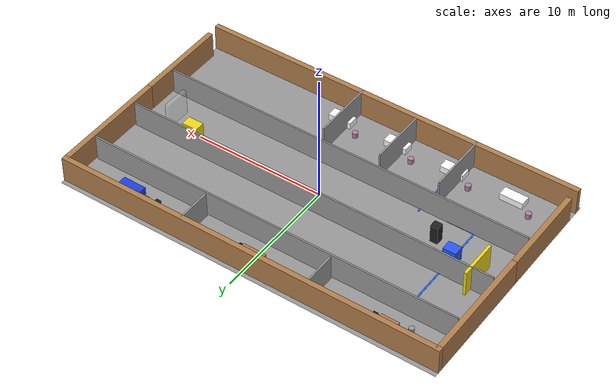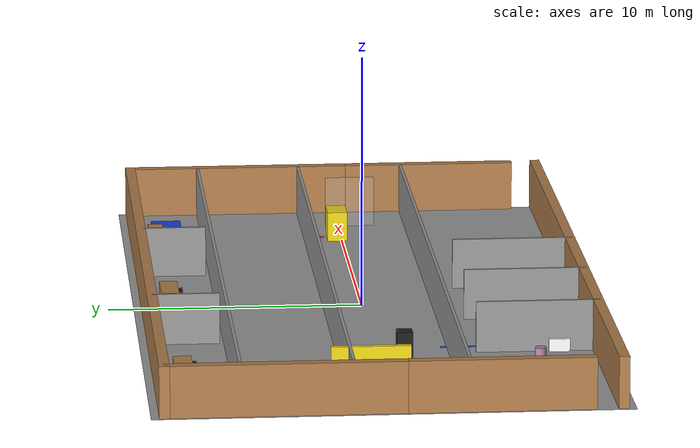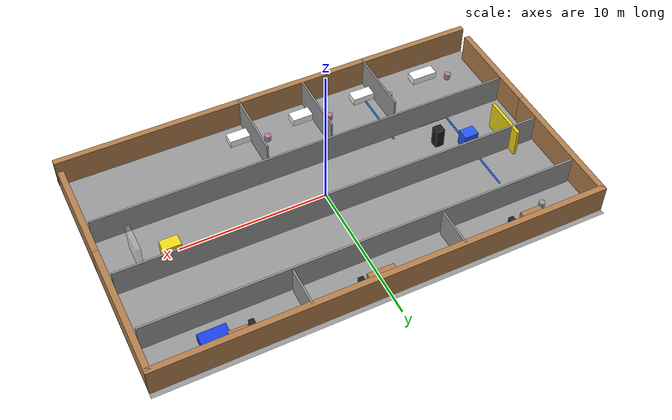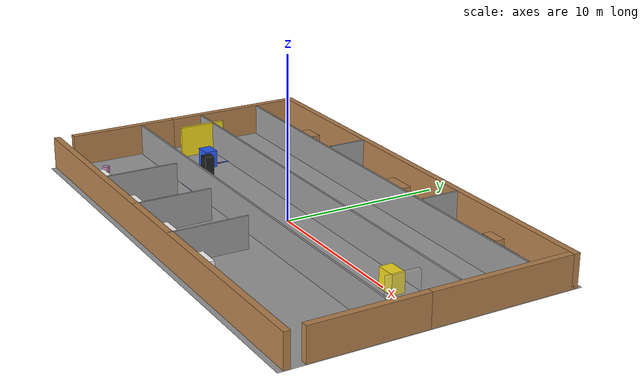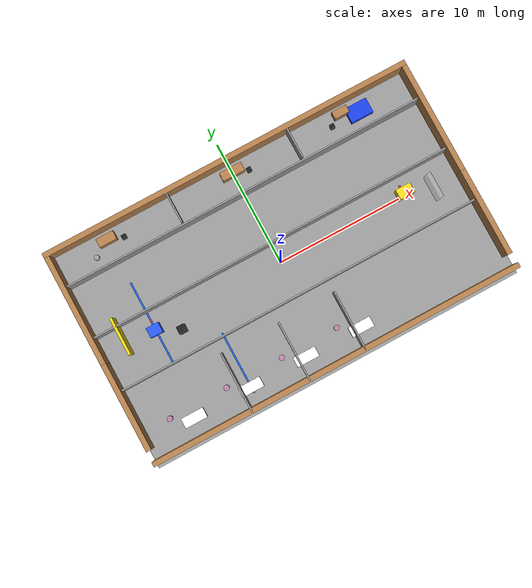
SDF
<?xml version="1.0"?>
<sdf version="1.7">
  <world name="hospital_world">
    <plugin name="gazebo_ros_init" filename="libgazebo_ros_init.so"/>
    <plugin name="gazebo_ros_factory" filename="libgazebo_ros_factory.so"/>
    <plugin name="gazebo_ros_state" filename="libgazebo_ros_state.so"/>

    <gravity>0 0 -9.8</gravity>

    <scene>
      <ambient>0.35 0.35 0.35 1</ambient>
      <background>0.75 0.75 0.75 1</background>
      <shadows>1</shadows>
    </scene>

    <light name="sun" type="directional">
      <cast_shadows>1</cast_shadows>
      <pose>0 0 10 0 0 0</pose>
      <diffuse>0.8 0.8 0.8 1</diffuse>
      <specular>0.2 0.2 0.2 1</specular>
      <attenuation>
        <range>1000</range>
        <constant>0.9</constant>
        <linear>0.01</linear>
        <quadratic>0.001</quadratic>
      </attenuation>
      <direction>-0.5 0.2 -0.9</direction>
    </light>

    <!-- Base floor with visible tiled grid -->
    <model name="hospital_floor">
      <static>1</static>
      <link name="floor_link">
        <collision name="floor_collision">
          <geometry>
            <plane>
              <normal>0 0 1</normal>
              <size>30 18</size>
            </plane>
          </geometry>
        </collision>
        <visual name="floor_visual">
          <geometry>
            <plane>
              <normal>0 0 1</normal>
              <size>30 18</size>
            </plane>
          </geometry>
          <material>
            <script>
              <uri>file://media/materials/scripts/gazebo.material</uri>
              <name>Gazebo/GreyGrid</name>
            </script>
          </material>
        </visual>
      </link>
      <pose>0 0 0 0 0 0</pose>
    </model>

    <!-- Outer structure: thick brown wooden walls with door gaps on left/right -->
    <model name="outer_walls">
      <static>1</static>
      <link name="walls_link">
        <!-- Top wall -->
        <collision name="top_col">
          <pose>0 8.5 1.0 0 0 0</pose>
          <geometry><box><size>30 0.4 2</size></box></geometry>
        </collision>
        <visual name="top_vis">
          <pose>0 8.5 1.0 0 0 0</pose>
          <geometry><box><size>30 0.4 2</size></box></geometry>
          <material>
            <script>
              <uri>file://media/materials/scripts/gazebo.material</uri>
              <name>Gazebo/Wood</name>
            </script>
            <ambient>0.35 0.2 0.08 1</ambient>
            <diffuse>0.45 0.25 0.1 1</diffuse>
          </material>
        </visual>

        <!-- Bottom wall -->
        <collision name="bot_col">
          <pose>0 -8.5 1.0 0 0 0</pose>
          <geometry><box><size>30 0.4 2</size></box></geometry>
        </collision>
        <visual name="bot_vis">
          <pose>0 -8.5 1.0 0 0 0</pose>
          <geometry><box><size>30 0.4 2</size></box></geometry>
          <material>
            <script>
              <uri>file://media/materials/scripts/gazebo.material</uri>
              <name>Gazebo/Wood</name>
            </script>
            <ambient>0.35 0.2 0.08 1</ambient>
            <diffuse>0.45 0.25 0.1 1</diffuse>
          </material>
        </visual>

        <!-- Left wall split into 2 segments to create a doorway gap -->
        <collision name="left_top_col">
          <pose>-14.8 4.0 1.0 0 0 0</pose>
          <geometry><box><size>0.4 9.0 2</size></box></geometry>
        </collision>
        <visual name="left_top_vis">
          <pose>-14.8 4.0 1.0 0 0 0</pose>
          <geometry><box><size>0.4 9.0 2</size></box></geometry>
          <material>
            <script>
              <uri>file://media/materials/scripts/gazebo.material</uri>
              <name>Gazebo/Wood</name>
            </script>
            <ambient>0.35 0.2 0.08 1</ambient>
            <diffuse>0.45 0.25 0.1 1</diffuse>
          </material>
        </visual>
        <collision name="left_bot_col">
          <pose>-14.8 -4.0 1.0 0 0 0</pose>
          <geometry><box><size>0.4 7.0 2</size></box></geometry>
        </collision>
        <visual name="left_bot_vis">
          <pose>-14.8 -4.0 1.0 0 0 0</pose>
          <geometry><box><size>0.4 7.0 2</size></box></geometry>
          <material>
            <script>
              <uri>file://media/materials/scripts/gazebo.material</uri>
              <name>Gazebo/Wood</name>
            </script>
            <ambient>0.35 0.2 0.08 1</ambient>
            <diffuse>0.45 0.25 0.1 1</diffuse>
          </material>
        </visual>

        <!-- Right wall split into 2 segments to create a doorway gap -->
        <collision name="right_top_col">
          <pose>14.8 4.0 1.0 0 0 0</pose>
          <geometry><box><size>0.4 9.0 2</size></box></geometry>
        </collision>
        <visual name="right_top_vis">
          <pose>14.8 4.0 1.0 0 0 0</pose>
          <geometry><box><size>0.4 9.0 2</size></box></geometry>
          <material>
            <script>
              <uri>file://media/materials/scripts/gazebo.material</uri>
              <name>Gazebo/Wood</name>
            </script>
            <ambient>0.35 0.2 0.08 1</ambient>
            <diffuse>0.45 0.25 0.1 1</diffuse>
          </material>
        </visual>
        <collision name="right_bot_col">
          <pose>14.8 -4.0 1.0 0 0 0</pose>
          <geometry><box><size>0.4 7.0 2</size></box></geometry>
        </collision>
        <visual name="right_bot_vis">
          <pose>14.8 -4.0 1.0 0 0 0</pose>
          <geometry><box><size>0.4 7.0 2</size></box></geometry>
          <material>
            <script>
              <uri>file://media/materials/scripts/gazebo.material</uri>
              <name>Gazebo/Wood</name>
            </script>
            <ambient>0.35 0.2 0.08 1</ambient>
            <diffuse>0.45 0.25 0.1 1</diffuse>
          </material>
        </visual>
      </link>
    </model>

    <!-- Internal thin grey partition walls with door gaps.
         Coordinate system: x left(-) to right(+), y bottom(-) to top(+). -->
    <model name="internal_walls">
      <static>1</static>
      <link name="iw_link">
        <!-- Horizontal walls defining zones -->
        <visual name="hz_top_rooms">
          <pose>0 5.7 1.0 0 0 0</pose>
          <geometry><box><size>29.0 0.12 2</size></box></geometry>
          <material>
            <script><uri>file://media/materials/scripts/gazebo.material</uri><name>Gazebo/Grey</name></script>
          </material>
        </visual>
        <collision name="hz_top_rooms_col">
          <pose>0 5.7 1.0 0 0 0</pose>
          <geometry><box><size>29.0 0.12 2</size></box></geometry>
        </collision>

        <visual name="hz_mid_zone">
          <pose>0 1.5 1.0 0 0 0</pose>
          <geometry><box><size>29.0 0.12 2</size></box></geometry>
          <material>
            <script><uri>file://media/materials/scripts/gazebo.material</uri><name>Gazebo/Grey</name></script>
          </material>
        </visual>
        <collision name="hz_mid_zone_col">
          <pose>0 1.5 1.0 0 0 0</pose>
          <geometry><box><size>29.0 0.12 2</size></box></geometry>
        </collision>

        <visual name="hz_lower_corridor">
          <pose>0 -2.8 1.0 0 0 0</pose>
          <geometry><box><size>29.0 0.12 2</size></box></geometry>
          <material>
            <script><uri>file://media/materials/scripts/gazebo.material</uri><name>Gazebo/Grey</name></script>
          </material>
        </visual>
        <collision name="hz_lower_corridor_col">
          <pose>0 -2.8 1.0 0 0 0</pose>
          <geometry><box><size>29.0 0.12 2</size></box></geometry>
        </collision>

        <!-- Vertical separators for top 3 rooms (doorways on corridor side) -->
        <visual name="top_room_sep_1">
          <pose>-5.0 7.2 1.0 0 0 0</pose>
          <geometry><box><size>0.12 2.6 2</size></box></geometry>
          <material><script><uri>file://media/materials/scripts/gazebo.material</uri><name>Gazebo/Grey</name></script></material>
        </visual>
        <collision name="top_room_sep_1_col">
          <pose>-5.0 7.2 1.0 0 0 0</pose>
          <geometry><box><size>0.12 2.6 2</size></box></geometry>
        </collision>
        <visual name="top_room_sep_2">
          <pose>5.0 7.2 1.0 0 0 0</pose>
          <geometry><box><size>0.12 2.6 2</size></box></geometry>
          <material><script><uri>file://media/materials/scripts/gazebo.material</uri><name>Gazebo/Grey</name></script></material>
        </visual>
        <collision name="top_room_sep_2_col">
          <pose>5.0 7.2 1.0 0 0 0</pose>
          <geometry><box><size>0.12 2.6 2</size></box></geometry>
        </collision>

        <!-- Bottom patient rooms: 4 partitions, leaving doorway gaps (not fully modeled; just separators) -->
        <visual name="patient_sep_1">
          <pose>-7.0 -6.2 1.0 0 0 0</pose>
          <geometry><box><size>0.12 4.8 2</size></box></geometry>
          <material><script><uri>file://media/materials/scripts/gazebo.material</uri><name>Gazebo/Grey</name></script></material>
        </visual>
        <collision name="patient_sep_1_col">
          <pose>-7.0 -6.2 1.0 0 0 0</pose>
          <geometry><box><size>0.12 4.8 2</size></box></geometry>
        </collision>
        <visual name="patient_sep_2">
          <pose>-2.3 -6.2 1.0 0 0 0</pose>
          <geometry><box><size>0.12 4.8 2</size></box></geometry>
          <material><script><uri>file://media/materials/scripts/gazebo.material</uri><name>Gazebo/Grey</name></script></material>
        </visual>
        <collision name="patient_sep_2_col">
          <pose>-2.3 -6.2 1.0 0 0 0</pose>
          <geometry><box><size>0.12 4.8 2</size></box></geometry>
        </collision>
        <visual name="patient_sep_3">
          <pose>2.3 -6.2 1.0 0 0 0</pose>
          <geometry><box><size>0.12 4.8 2</size></box></geometry>
          <material><script><uri>file://media/materials/scripts/gazebo.material</uri><name>Gazebo/Grey</name></script></material>
        </visual>
        <collision name="patient_sep_3_col">
          <pose>2.3 -6.2 1.0 0 0 0</pose>
          <geometry><box><size>0.12 4.8 2</size></box></geometry>
        </collision>
      </link>
    </model>

    <!-- Furniture / equipment (simple colored primitives for the top-down layout) -->
    <model name="top_zone_furniture">
      <static>1</static>
      <link name="fz_link">
        <!-- Office/Admin: desk + chair + stool -->
        <visual name="office_desk"><pose>-10.5 7.6 0.45 0 0 0</pose><geometry><box><size>1.4 0.7 0.9</size></box></geometry>
          <material><script><uri>file://media/materials/scripts/gazebo.material</uri><name>Gazebo/Wood</name></script></material></visual>
        <collision name="office_desk_col"><pose>-10.5 7.6 0.45 0 0 0</pose><geometry><box><size>1.4 0.7 0.9</size></box></geometry></collision>
        <visual name="office_chair"><pose>-9.3 7.2 0.25 0 0 0</pose><geometry><box><size>0.35 0.35 0.5</size></box></geometry>
          <material><script><uri>file://media/materials/scripts/gazebo.material</uri><name>Gazebo/Black</name></script></material></visual>
        <collision name="office_chair_col"><pose>-9.3 7.2 0.25 0 0 0</pose><geometry><box><size>0.35 0.35 0.5</size></box></geometry></collision>
        <visual name="office_stool"><pose>-11.8 6.8 0.2 0 0 0</pose><geometry><cylinder><radius>0.2</radius><length>0.4</length></cylinder></geometry>
          <material><script><uri>file://media/materials/scripts/gazebo.material</uri><name>Gazebo/Grey</name></script></material></visual>
        <collision name="office_stool_col"><pose>-11.8 6.8 0.2 0 0 0</pose><geometry><cylinder><radius>0.2</radius><length>0.4</length></cylinder></geometry></collision>

        <!-- Nurse station: desk + chair -->
        <visual name="nurse_desk"><pose>0 7.6 0.45 0 0 0</pose><geometry><box><size>1.8 0.7 0.9</size></box></geometry>
          <material><script><uri>file://media/materials/scripts/gazebo.material</uri><name>Gazebo/Wood</name></script></material></visual>
        <collision name="nurse_desk_col"><pose>0 7.6 0.45 0 0 0</pose><geometry><box><size>1.8 0.7 0.9</size></box></geometry></collision>
        <visual name="nurse_chair"><pose>1.2 7.2 0.25 0 0 0</pose><geometry><box><size>0.35 0.35 0.5</size></box></geometry>
          <material><script><uri>file://media/materials/scripts/gazebo.material</uri><name>Gazebo/Black</name></script></material></visual>
        <collision name="nurse_chair_col"><pose>1.2 7.2 0.25 0 0 0</pose><geometry><box><size>0.35 0.35 0.5</size></box></geometry></collision>

        <!-- Blue window/bed area + desk + chair -->
        <visual name="blue_bed_area"><pose>10.5 7.2 0.3 0 0 0</pose><geometry><box><size>1.8 1.2 0.6</size></box></geometry>
          <material><ambient>0.1 0.25 0.9 1</ambient><diffuse>0.1 0.25 0.9 1</diffuse></material></visual>
        <collision name="blue_bed_area_col"><pose>10.5 7.2 0.3 0 0 0</pose><geometry><box><size>1.8 1.2 0.6</size></box></geometry></collision>
        <visual name="blue_desk"><pose>9.2 7.7 0.45 0 0 0</pose><geometry><box><size>1.2 0.6 0.9</size></box></geometry>
          <material><script><uri>file://media/materials/scripts/gazebo.material</uri><name>Gazebo/Wood</name></script></material></visual>
        <collision name="blue_desk_col"><pose>9.2 7.7 0.45 0 0 0</pose><geometry><box><size>1.2 0.6 0.9</size></box></geometry></collision>
        <visual name="blue_chair"><pose>8.2 7.1 0.25 0 0 0</pose><geometry><box><size>0.35 0.35 0.5</size></box></geometry>
          <material><script><uri>file://media/materials/scripts/gazebo.material</uri><name>Gazebo/Black</name></script></material></visual>
        <collision name="blue_chair_col"><pose>8.2 7.1 0.25 0 0 0</pose><geometry><box><size>0.35 0.35 0.5</size></box></geometry></collision>
      </link>
    </model>

    <model name="middle_zone_equipment">
      <static>1</static>
      <link name="mz_link">
        <!-- Left equipment: blue cabinet/machine -->
        <visual name="blue_machine"><pose>-10.5 0.0 0.55 0 0 0</pose><geometry><box><size>1.0 0.8 1.1</size></box></geometry>
          <material><ambient>0.15 0.35 0.95 1</ambient><diffuse>0.15 0.35 0.95 1</diffuse></material></visual>
        <collision name="blue_machine_col"><pose>-10.5 0.0 0.55 0 0 0</pose><geometry><box><size>1.0 0.8 1.1</size></box></geometry></collision>

        <!-- Yellow wall panels -->
        <visual name="yellow_panel_1"><pose>-12.8 0.7 1.0 0 0 0</pose><geometry><box><size>0.2 3.0 2</size></box></geometry>
          <material><ambient>0.95 0.85 0.1 1</ambient><diffuse>0.95 0.85 0.1 1</diffuse></material></visual>
        <collision name="yellow_panel_1_col"><pose>-12.8 0.7 1.0 0 0 0</pose><geometry><box><size>0.2 3.0 2</size></box></geometry></collision>

        <!-- Black equipment rack -->
        <visual name="black_rack"><pose>-8.7 -0.9 0.7 0 0 0</pose><geometry><box><size>0.6 0.6 1.4</size></box></geometry>
          <material><script><uri>file://media/materials/scripts/gazebo.material</uri><name>Gazebo/Black</name></script></material></visual>
        <collision name="black_rack_col"><pose>-8.7 -0.9 0.7 0 0 0</pose><geometry><box><size>0.6 0.6 1.4</size></box></geometry></collision>

        <!-- Right yellow cabinet -->
        <visual name="yellow_cabinet"><pose>10.5 0.2 0.6 0 0 0</pose><geometry><box><size>1.2 0.8 1.2</size></box></geometry>
          <material><ambient>0.95 0.85 0.1 1</ambient><diffuse>0.95 0.85 0.1 1</diffuse></material></visual>
        <collision name="yellow_cabinet_col"><pose>10.5 0.2 0.6 0 0 0</pose><geometry><box><size>1.2 0.8 1.2</size></box></geometry></collision>

        <!-- Open archway (visual hint only) -->
        <visual name="archway"><pose>12.5 -0.5 1.0 0 0 0</pose><geometry><box><size>0.3 2.0 2</size></box></geometry>
          <material><ambient>0.8 0.8 0.8 0.25</ambient><diffuse>0.8 0.8 0.8 0.25</diffuse></material></visual>
      </link>
    </model>

    <!-- Bottom zone: 4 patient rooms with beds + pink bedside tables -->
    <model name="patient_room_furniture">
      <static>1</static>
      <link name="pr_link">
        <!-- Beds (white) and bedside tables (mauve) -->
        <!-- Room 1 -->
        <visual name="bed_1"><pose>-11.0 -7.0 0.25 0 0 0</pose><geometry><box><size>1.8 0.8 0.5</size></box></geometry>
          <material><ambient>1 1 1 1</ambient><diffuse>1 1 1 1</diffuse></material></visual>
        <collision name="bed_1_col"><pose>-11.0 -7.0 0.25 0 0 0</pose><geometry><box><size>1.8 0.8 0.5</size></box></geometry></collision>
        <visual name="table_1"><pose>-12.6 -6.2 0.2 0 0 0</pose><geometry><cylinder><radius>0.22</radius><length>0.4</length></cylinder></geometry>
          <material><ambient>0.7 0.5 0.65 1</ambient><diffuse>0.7 0.5 0.65 1</diffuse></material></visual>
        <collision name="table_1_col"><pose>-12.6 -6.2 0.2 0 0 0</pose><geometry><cylinder><radius>0.22</radius><length>0.4</length></cylinder></geometry></collision>
        <!-- Room 2 -->
        <visual name="bed_2"><pose>-6.3 -7.0 0.25 0 0 0</pose><geometry><box><size>1.8 0.8 0.5</size></box></geometry>
          <material><ambient>1 1 1 1</ambient><diffuse>1 1 1 1</diffuse></material></visual>
        <collision name="bed_2_col"><pose>-6.3 -7.0 0.25 0 0 0</pose><geometry><box><size>1.8 0.8 0.5</size></box></geometry></collision>
        <visual name="table_2"><pose>-7.9 -6.2 0.2 0 0 0</pose><geometry><cylinder><radius>0.22</radius><length>0.4</length></cylinder></geometry>
          <material><ambient>0.7 0.5 0.65 1</ambient><diffuse>0.7 0.5 0.65 1</diffuse></material></visual>
        <collision name="table_2_col"><pose>-7.9 -6.2 0.2 0 0 0</pose><geometry><cylinder><radius>0.22</radius><length>0.4</length></cylinder></geometry></collision>
        <!-- Room 3 -->
        <visual name="bed_3"><pose>-1.7 -7.0 0.25 0 0 0</pose><geometry><box><size>1.8 0.8 0.5</size></box></geometry>
          <material><ambient>1 1 1 1</ambient><diffuse>1 1 1 1</diffuse></material></visual>
        <collision name="bed_3_col"><pose>-1.7 -7.0 0.25 0 0 0</pose><geometry><box><size>1.8 0.8 0.5</size></box></geometry></collision>
        <visual name="table_3"><pose>-3.3 -6.2 0.2 0 0 0</pose><geometry><cylinder><radius>0.22</radius><length>0.4</length></cylinder></geometry>
          <material><ambient>0.7 0.5 0.65 1</ambient><diffuse>0.7 0.5 0.65 1</diffuse></material></visual>
        <collision name="table_3_col"><pose>-3.3 -6.2 0.2 0 0 0</pose><geometry><cylinder><radius>0.22</radius><length>0.4</length></cylinder></geometry></collision>
        <!-- Room 4 -->
        <visual name="bed_4"><pose>2.9 -7.0 0.25 0 0 0</pose><geometry><box><size>1.8 0.8 0.5</size></box></geometry>
          <material><ambient>1 1 1 1</ambient><diffuse>1 1 1 1</diffuse></material></visual>
        <collision name="bed_4_col"><pose>2.9 -7.0 0.25 0 0 0</pose><geometry><box><size>1.8 0.8 0.5</size></box></geometry></collision>
        <visual name="table_4"><pose>1.3 -6.2 0.2 0 0 0</pose><geometry><cylinder><radius>0.22</radius><length>0.4</length></cylinder></geometry>
          <material><ambient>0.7 0.5 0.65 1</ambient><diffuse>0.7 0.5 0.65 1</diffuse></material></visual>
        <collision name="table_4_col"><pose>1.3 -6.2 0.2 0 0 0</pose><geometry><cylinder><radius>0.22</radius><length>0.4</length></cylinder></geometry></collision>
      </link>
    </model>

    <!-- Task markers: pink/red squares -->
    <model name="task_pickup_marker">
      <static>1</static>
      <pose>-10.5 0.8 0.025 0 0 0</pose>
      <link name="link">
        <visual name="v">
          <geometry><box><size>0.15 0.15 0.05</size></box></geometry>
          <material><ambient>0.95 0.2 0.4 1</ambient><diffuse>0.95 0.2 0.4 1</diffuse></material>
        </visual>
      </link>
    </model>
    <model name="task_dropoff_marker">
      <static>1</static>
      <pose>10.5 0.8 0.025 0 0 0</pose>
      <link name="link">
        <visual name="v">
          <geometry><box><size>0.15 0.15 0.05</size></box></geometry>
          <material><ambient>0.95 0.2 0.4 1</ambient><diffuse>0.95 0.2 0.4 1</diffuse></material>
        </visual>
      </link>
    </model>

    <!-- Robot_2 planned path visualization (blue line approximated by thin boxes) -->
    <model name="robot2_path_line">
      <static>1</static>
      <link name="link">
        <visual name="seg1"><pose>-6.3 -5.0 0.03 0 0 0</pose><geometry><box><size>0.12 5.0 0.02</size></box></geometry>
          <material><ambient>0.1 0.4 0.95 1</ambient><diffuse>0.1 0.4 0.95 1</diffuse></material></visual>
        <visual name="seg2"><pose>-8.4 -2.8 0.03 0 0 1.57</pose><geometry><box><size>0.12 4.2 0.02</size></box></geometry>
          <material><ambient>0.1 0.4 0.95 1</ambient><diffuse>0.1 0.4 0.95 1</diffuse></material></visual>
        <visual name="seg3"><pose>-10.5 0.6 0.03 0 0 0</pose><geometry><box><size>0.12 6.8 0.02</size></box></geometry>
          <material><ambient>0.1 0.4 0.95 1</ambient><diffuse>0.1 0.4 0.95 1</diffuse></material></visual>
      </link>
    </model>
  </world>
</sdf>
